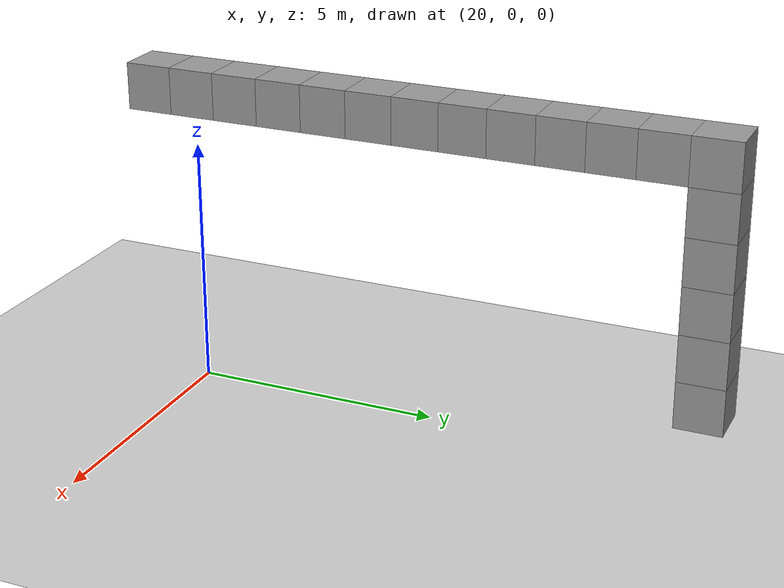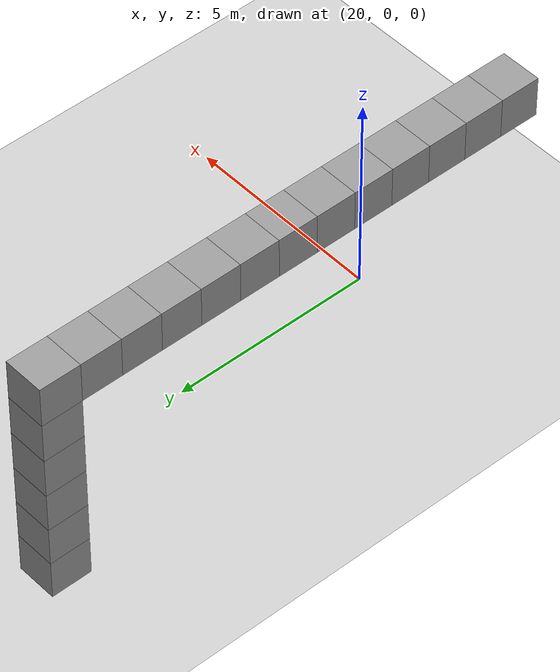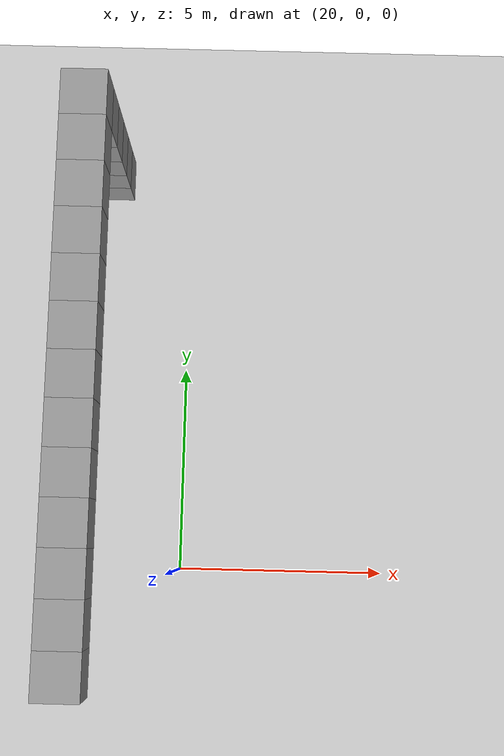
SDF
<sdf version="1.6">
 <world name="default">
  <model name="ground_plane">
   <static>1</static>
   <link name="link">
    <collision name="collision">
     <geometry><plane><normal>0 0 1</normal><size>100 100</size></plane></geometry>
     <surface>
      <contact><collide_bitmask>65535</collide_bitmask></contact>
      <friction><ode><mu>100</mu><mu2>50</mu2></ode></friction>
     </surface>
    </collision>
    <visual name="visual">
     <cast_shadows>0</cast_shadows>
     <geometry><plane><normal>0 0 1</normal><size>100 100</size></plane></geometry>
     <material>
      <script><uri>file://media/materials/scripts/gazebo.material</uri><name>Gazebo/Grey</name></script>
     </material>
    </visual>
   </link>
  </model>
  <model name="obs_box_clone_1_clone_clone_clone_clone_clone_clone_clone_3">
   <link name="link">
    <inertial>
     <mass>1</mass>
     <inertia>
      <ixx>0.166667</ixx>
      <ixy>0</ixy>
      <ixz>0</ixz>
      <iyy>0.166667</iyy>
      <iyz>0</iyz>
      <izz>0.166667</izz>
     </inertia>
    </inertial>
    <visual name="visual">
     <geometry><box><size>1 1 1</size></box></geometry>
     <material>
      <script><name>Gazebo/Grey</name><uri>file://media/materials/scripts/gazebo.material</uri></script>
     </material>
    </visual>
    <collision name="collision">
     <geometry><box><size>1 1 1</size></box></geometry>
     <surface>
      <friction>
       <ode><mu>1</mu><mu2>1</mu2><fdir1>0 0 0</fdir1><slip1>0</slip1><slip2>0</slip2></ode>
       <torsional>
        <coefficient>1</coefficient>
        <patch_radius>0</patch_radius>
        <surface_radius>0</surface_radius>
        <use_patch_radius>1</use_patch_radius>
        <ode><slip>0</slip></ode>
       </torsional>
      </friction>
      <bounce><restitution_coefficient>0</restitution_coefficient><threshold>1e+06</threshold></bounce>
      <contact>
       <collide_without_contact>0</collide_without_contact>
       <collide_without_contact_bitmask>1</collide_without_contact_bitmask>
       <collide_bitmask>1</collide_bitmask>
       <ode>
        <soft_cfm>0</soft_cfm>
        <soft_erp>0.2</soft_erp>
        <kp>1e+13</kp>
        <kd>1</kd>
        <max_vel>0.01</max_vel>
        <min_depth>0</min_depth>
       </ode>
       <bullet>
        <split_impulse>1</split_impulse>
        <split_impulse_penetration_threshold>-0.01</split_impulse_penetration_threshold>
        <soft_cfm>0</soft_cfm>
        <soft_erp>0.2</soft_erp>
        <kp>1e+13</kp>
        <kd>1</kd>
       </bullet>
      </contact>
     </surface>
    </collision>
   </link>
   <static>1</static>
   <pose>18 -2 5.5 0 -0 0</pose>
  </model>
  <model name="obs_box_clone_1_clone_clone_clone_clone_clone_clone_clone_4">
   <link name="link">
    <inertial>
     <mass>1</mass>
     <inertia>
      <ixx>0.166667</ixx>
      <ixy>0</ixy>
      <ixz>0</ixz>
      <iyy>0.166667</iyy>
      <iyz>0</iyz>
      <izz>0.166667</izz>
     </inertia>
    </inertial>
    <visual name="visual">
     <geometry><box><size>1 1 1</size></box></geometry>
     <material>
      <script><name>Gazebo/Grey</name><uri>file://media/materials/scripts/gazebo.material</uri></script>
     </material>
    </visual>
    <collision name="collision">
     <geometry><box><size>1 1 1</size></box></geometry>
     <surface>
      <friction>
       <ode><mu>1</mu><mu2>1</mu2><fdir1>0 0 0</fdir1><slip1>0</slip1><slip2>0</slip2></ode>
       <torsional>
        <coefficient>1</coefficient>
        <patch_radius>0</patch_radius>
        <surface_radius>0</surface_radius>
        <use_patch_radius>1</use_patch_radius>
        <ode><slip>0</slip></ode>
       </torsional>
      </friction>
      <bounce><restitution_coefficient>0</restitution_coefficient><threshold>1e+06</threshold></bounce>
      <contact>
       <collide_without_contact>0</collide_without_contact>
       <collide_without_contact_bitmask>1</collide_without_contact_bitmask>
       <collide_bitmask>1</collide_bitmask>
       <ode>
        <soft_cfm>0</soft_cfm>
        <soft_erp>0.2</soft_erp>
        <kp>1e+13</kp>
        <kd>1</kd>
        <max_vel>0.01</max_vel>
        <min_depth>0</min_depth>
       </ode>
       <bullet>
        <split_impulse>1</split_impulse>
        <split_impulse_penetration_threshold>-0.01</split_impulse_penetration_threshold>
        <soft_cfm>0</soft_cfm>
        <soft_erp>0.2</soft_erp>
        <kp>1e+13</kp>
        <kd>1</kd>
       </bullet>
      </contact>
     </surface>
    </collision>
   </link>
   <static>1</static>
   <pose>18 -1 5.5 0 -0 0</pose>
  </model>
  <model name="obs_box_clone_1_clone_clone_clone_clone_clone_clone_clone_5">
   <link name="link">
    <inertial>
     <mass>1</mass>
     <inertia>
      <ixx>0.166667</ixx>
      <ixy>0</ixy>
      <ixz>0</ixz>
      <iyy>0.166667</iyy>
      <iyz>0</iyz>
      <izz>0.166667</izz>
     </inertia>
    </inertial>
    <visual name="visual">
     <geometry><box><size>1 1 1</size></box></geometry>
     <material>
      <script><name>Gazebo/Grey</name><uri>file://media/materials/scripts/gazebo.material</uri></script>
     </material>
    </visual>
    <collision name="collision">
     <geometry><box><size>1 1 1</size></box></geometry>
     <surface>
      <friction>
       <ode><mu>1</mu><mu2>1</mu2><fdir1>0 0 0</fdir1><slip1>0</slip1><slip2>0</slip2></ode>
       <torsional>
        <coefficient>1</coefficient>
        <patch_radius>0</patch_radius>
        <surface_radius>0</surface_radius>
        <use_patch_radius>1</use_patch_radius>
        <ode><slip>0</slip></ode>
       </torsional>
      </friction>
      <bounce><restitution_coefficient>0</restitution_coefficient><threshold>1e+06</threshold></bounce>
      <contact>
       <collide_without_contact>0</collide_without_contact>
       <collide_without_contact_bitmask>1</collide_without_contact_bitmask>
       <collide_bitmask>1</collide_bitmask>
       <ode>
        <soft_cfm>0</soft_cfm>
        <soft_erp>0.2</soft_erp>
        <kp>1e+13</kp>
        <kd>1</kd>
        <max_vel>0.01</max_vel>
        <min_depth>0</min_depth>
       </ode>
       <bullet>
        <split_impulse>1</split_impulse>
        <split_impulse_penetration_threshold>-0.01</split_impulse_penetration_threshold>
        <soft_cfm>0</soft_cfm>
        <soft_erp>0.2</soft_erp>
        <kp>1e+13</kp>
        <kd>1</kd>
       </bullet>
      </contact>
     </surface>
    </collision>
   </link>
   <static>1</static>
   <pose>18 0 5.5 0 -0 0</pose>
  </model>
  <model name="obs_box_clone_1_clone_clone_clone_clone_clone_clone_clone_6">
   <link name="link">
    <inertial>
     <mass>1</mass>
     <inertia>
      <ixx>0.166667</ixx>
      <ixy>0</ixy>
      <ixz>0</ixz>
      <iyy>0.166667</iyy>
      <iyz>0</iyz>
      <izz>0.166667</izz>
     </inertia>
    </inertial>
    <visual name="visual">
     <geometry><box><size>1 1 1</size></box></geometry>
     <material>
      <script><name>Gazebo/Grey</name><uri>file://media/materials/scripts/gazebo.material</uri></script>
     </material>
    </visual>
    <collision name="collision">
     <geometry><box><size>1 1 1</size></box></geometry>
     <surface>
      <friction>
       <ode><mu>1</mu><mu2>1</mu2><fdir1>0 0 0</fdir1><slip1>0</slip1><slip2>0</slip2></ode>
       <torsional>
        <coefficient>1</coefficient>
        <patch_radius>0</patch_radius>
        <surface_radius>0</surface_radius>
        <use_patch_radius>1</use_patch_radius>
        <ode><slip>0</slip></ode>
       </torsional>
      </friction>
      <bounce><restitution_coefficient>0</restitution_coefficient><threshold>1e+06</threshold></bounce>
      <contact>
       <collide_without_contact>0</collide_without_contact>
       <collide_without_contact_bitmask>1</collide_without_contact_bitmask>
       <collide_bitmask>1</collide_bitmask>
       <ode>
        <soft_cfm>0</soft_cfm>
        <soft_erp>0.2</soft_erp>
        <kp>1e+13</kp>
        <kd>1</kd>
        <max_vel>0.01</max_vel>
        <min_depth>0</min_depth>
       </ode>
       <bullet>
        <split_impulse>1</split_impulse>
        <split_impulse_penetration_threshold>-0.01</split_impulse_penetration_threshold>
        <soft_cfm>0</soft_cfm>
        <soft_erp>0.2</soft_erp>
        <kp>1e+13</kp>
        <kd>1</kd>
       </bullet>
      </contact>
     </surface>
    </collision>
   </link>
   <static>1</static>
   <pose>18 1 5.5 0 -0 0</pose>
  </model>
  <model name="obs_box_clone_1_clone_clone_clone_clone_clone_clone_clone_7">
   <link name="link">
    <inertial>
     <mass>1</mass>
     <inertia>
      <ixx>0.166667</ixx>
      <ixy>0</ixy>
      <ixz>0</ixz>
      <iyy>0.166667</iyy>
      <iyz>0</iyz>
      <izz>0.166667</izz>
     </inertia>
    </inertial>
    <visual name="visual">
     <geometry><box><size>1 1 1</size></box></geometry>
     <material>
      <script><name>Gazebo/Grey</name><uri>file://media/materials/scripts/gazebo.material</uri></script>
     </material>
    </visual>
    <collision name="collision">
     <geometry><box><size>1 1 1</size></box></geometry>
     <surface>
      <friction>
       <ode><mu>1</mu><mu2>1</mu2><fdir1>0 0 0</fdir1><slip1>0</slip1><slip2>0</slip2></ode>
       <torsional>
        <coefficient>1</coefficient>
        <patch_radius>0</patch_radius>
        <surface_radius>0</surface_radius>
        <use_patch_radius>1</use_patch_radius>
        <ode><slip>0</slip></ode>
       </torsional>
      </friction>
      <bounce><restitution_coefficient>0</restitution_coefficient><threshold>1e+06</threshold></bounce>
      <contact>
       <collide_without_contact>0</collide_without_contact>
       <collide_without_contact_bitmask>1</collide_without_contact_bitmask>
       <collide_bitmask>1</collide_bitmask>
       <ode>
        <soft_cfm>0</soft_cfm>
        <soft_erp>0.2</soft_erp>
        <kp>1e+13</kp>
        <kd>1</kd>
        <max_vel>0.01</max_vel>
        <min_depth>0</min_depth>
       </ode>
       <bullet>
        <split_impulse>1</split_impulse>
        <split_impulse_penetration_threshold>-0.01</split_impulse_penetration_threshold>
        <soft_cfm>0</soft_cfm>
        <soft_erp>0.2</soft_erp>
        <kp>1e+13</kp>
        <kd>1</kd>
       </bullet>
      </contact>
     </surface>
    </collision>
   </link>
   <static>1</static>
   <pose>18 3 5.5 0 -0 0</pose>
  </model>
  <model name="obs_box_clone_1_clone_clone_clone_clone_clone_clone_clone_8">
   <link name="link">
    <inertial>
     <mass>1</mass>
     <inertia>
      <ixx>0.166667</ixx>
      <ixy>0</ixy>
      <ixz>0</ixz>
      <iyy>0.166667</iyy>
      <iyz>0</iyz>
      <izz>0.166667</izz>
     </inertia>
    </inertial>
    <visual name="visual">
     <geometry><box><size>1 1 1</size></box></geometry>
     <material>
      <script><name>Gazebo/Grey</name><uri>file://media/materials/scripts/gazebo.material</uri></script>
     </material>
    </visual>
    <collision name="collision">
     <geometry><box><size>1 1 1</size></box></geometry>
     <surface>
      <friction>
       <ode><mu>1</mu><mu2>1</mu2><fdir1>0 0 0</fdir1><slip1>0</slip1><slip2>0</slip2></ode>
       <torsional>
        <coefficient>1</coefficient>
        <patch_radius>0</patch_radius>
        <surface_radius>0</surface_radius>
        <use_patch_radius>1</use_patch_radius>
        <ode><slip>0</slip></ode>
       </torsional>
      </friction>
      <bounce><restitution_coefficient>0</restitution_coefficient><threshold>1e+06</threshold></bounce>
      <contact>
       <collide_without_contact>0</collide_without_contact>
       <collide_without_contact_bitmask>1</collide_without_contact_bitmask>
       <collide_bitmask>1</collide_bitmask>
       <ode>
        <soft_cfm>0</soft_cfm>
        <soft_erp>0.2</soft_erp>
        <kp>1e+13</kp>
        <kd>1</kd>
        <max_vel>0.01</max_vel>
        <min_depth>0</min_depth>
       </ode>
       <bullet>
        <split_impulse>1</split_impulse>
        <split_impulse_penetration_threshold>-0.01</split_impulse_penetration_threshold>
        <soft_cfm>0</soft_cfm>
        <soft_erp>0.2</soft_erp>
        <kp>1e+13</kp>
        <kd>1</kd>
       </bullet>
      </contact>
     </surface>
    </collision>
   </link>
   <static>1</static>
   <pose>18 2 5.5 0 -0 0</pose>
  </model>
  <model name="obs_box_clone_1_clone_clone_clone_clone_clone_clone_clone_9">
   <link name="link">
    <inertial>
     <mass>1</mass>
     <inertia>
      <ixx>0.166667</ixx>
      <ixy>0</ixy>
      <ixz>0</ixz>
      <iyy>0.166667</iyy>
      <iyz>0</iyz>
      <izz>0.166667</izz>
     </inertia>
    </inertial>
    <visual name="visual">
     <geometry><box><size>1 1 1</size></box></geometry>
     <material>
      <script><name>Gazebo/Grey</name><uri>file://media/materials/scripts/gazebo.material</uri></script>
     </material>
    </visual>
    <collision name="collision">
     <geometry><box><size>1 1 1</size></box></geometry>
     <surface>
      <friction>
       <ode><mu>1</mu><mu2>1</mu2><fdir1>0 0 0</fdir1><slip1>0</slip1><slip2>0</slip2></ode>
       <torsional>
        <coefficient>1</coefficient>
        <patch_radius>0</patch_radius>
        <surface_radius>0</surface_radius>
        <use_patch_radius>1</use_patch_radius>
        <ode><slip>0</slip></ode>
       </torsional>
      </friction>
      <bounce><restitution_coefficient>0</restitution_coefficient><threshold>1e+06</threshold></bounce>
      <contact>
       <collide_without_contact>0</collide_without_contact>
       <collide_without_contact_bitmask>1</collide_without_contact_bitmask>
       <collide_bitmask>1</collide_bitmask>
       <ode>
        <soft_cfm>0</soft_cfm>
        <soft_erp>0.2</soft_erp>
        <kp>1e+13</kp>
        <kd>1</kd>
        <max_vel>0.01</max_vel>
        <min_depth>0</min_depth>
       </ode>
       <bullet>
        <split_impulse>1</split_impulse>
        <split_impulse_penetration_threshold>-0.01</split_impulse_penetration_threshold>
        <soft_cfm>0</soft_cfm>
        <soft_erp>0.2</soft_erp>
        <kp>1e+13</kp>
        <kd>1</kd>
       </bullet>
      </contact>
     </surface>
    </collision>
   </link>
   <static>1</static>
   <pose>18 4 5.5 0 -0 0</pose>
  </model>
  <model name="obs_box_clone_1_clone_clone_clone_clone_clone_clone_clone_10">
   <link name="link">
    <inertial>
     <mass>1</mass>
     <inertia>
      <ixx>0.166667</ixx>
      <ixy>0</ixy>
      <ixz>0</ixz>
      <iyy>0.166667</iyy>
      <iyz>0</iyz>
      <izz>0.166667</izz>
     </inertia>
    </inertial>
    <visual name="visual">
     <geometry><box><size>1 1 1</size></box></geometry>
     <material>
      <script><name>Gazebo/Grey</name><uri>file://media/materials/scripts/gazebo.material</uri></script>
     </material>
    </visual>
    <collision name="collision">
     <geometry><box><size>1 1 1</size></box></geometry>
     <surface>
      <friction>
       <ode><mu>1</mu><mu2>1</mu2><fdir1>0 0 0</fdir1><slip1>0</slip1><slip2>0</slip2></ode>
       <torsional>
        <coefficient>1</coefficient>
        <patch_radius>0</patch_radius>
        <surface_radius>0</surface_radius>
        <use_patch_radius>1</use_patch_radius>
        <ode><slip>0</slip></ode>
       </torsional>
      </friction>
      <bounce><restitution_coefficient>0</restitution_coefficient><threshold>1e+06</threshold></bounce>
      <contact>
       <collide_without_contact>0</collide_without_contact>
       <collide_without_contact_bitmask>1</collide_without_contact_bitmask>
       <collide_bitmask>1</collide_bitmask>
       <ode>
        <soft_cfm>0</soft_cfm>
        <soft_erp>0.2</soft_erp>
        <kp>1e+13</kp>
        <kd>1</kd>
        <max_vel>0.01</max_vel>
        <min_depth>0</min_depth>
       </ode>
       <bullet>
        <split_impulse>1</split_impulse>
        <split_impulse_penetration_threshold>-0.01</split_impulse_penetration_threshold>
        <soft_cfm>0</soft_cfm>
        <soft_erp>0.2</soft_erp>
        <kp>1e+13</kp>
        <kd>1</kd>
       </bullet>
      </contact>
     </surface>
    </collision>
   </link>
   <static>1</static>
   <pose>18 6 5.5 0 -0 0</pose>
  </model>
  <model name="obs_box_clone_1_clone_clone_clone_clone_clone_clone_clone_11">
   <link name="link">
    <inertial>
     <mass>1</mass>
     <inertia>
      <ixx>0.166667</ixx>
      <ixy>0</ixy>
      <ixz>0</ixz>
      <iyy>0.166667</iyy>
      <iyz>0</iyz>
      <izz>0.166667</izz>
     </inertia>
    </inertial>
    <visual name="visual">
     <geometry><box><size>1 1 1</size></box></geometry>
     <material>
      <script><name>Gazebo/Grey</name><uri>file://media/materials/scripts/gazebo.material</uri></script>
     </material>
    </visual>
    <collision name="collision">
     <geometry><box><size>1 1 1</size></box></geometry>
     <surface>
      <friction>
       <ode><mu>1</mu><mu2>1</mu2><fdir1>0 0 0</fdir1><slip1>0</slip1><slip2>0</slip2></ode>
       <torsional>
        <coefficient>1</coefficient>
        <patch_radius>0</patch_radius>
        <surface_radius>0</surface_radius>
        <use_patch_radius>1</use_patch_radius>
        <ode><slip>0</slip></ode>
       </torsional>
      </friction>
      <bounce><restitution_coefficient>0</restitution_coefficient><threshold>1e+06</threshold></bounce>
      <contact>
       <collide_without_contact>0</collide_without_contact>
       <collide_without_contact_bitmask>1</collide_without_contact_bitmask>
       <collide_bitmask>1</collide_bitmask>
       <ode>
        <soft_cfm>0</soft_cfm>
        <soft_erp>0.2</soft_erp>
        <kp>1e+13</kp>
        <kd>1</kd>
        <max_vel>0.01</max_vel>
        <min_depth>0</min_depth>
       </ode>
       <bullet>
        <split_impulse>1</split_impulse>
        <split_impulse_penetration_threshold>-0.01</split_impulse_penetration_threshold>
        <soft_cfm>0</soft_cfm>
        <soft_erp>0.2</soft_erp>
        <kp>1e+13</kp>
        <kd>1</kd>
       </bullet>
      </contact>
     </surface>
    </collision>
   </link>
   <static>1</static>
   <pose>18 5 5.5 0 -0 0</pose>
  </model>
  <model name="obs_box_clone_1_clone_0">
   <link name="link">
    <inertial>
     <mass>1</mass>
     <inertia>
      <ixx>0.166667</ixx>
      <ixy>0</ixy>
      <ixz>0</ixz>
      <iyy>0.166667</iyy>
      <iyz>0</iyz>
      <izz>0.166667</izz>
     </inertia>
    </inertial>
    <visual name="visual">
     <geometry><box><size>1 1 1</size></box></geometry>
     <material>
      <script><name>Gazebo/Grey</name><uri>file://media/materials/scripts/gazebo.material</uri></script>
     </material>
    </visual>
    <collision name="collision">
     <geometry><box><size>1 1 1</size></box></geometry>
     <surface>
      <friction>
       <ode><mu>1</mu><mu2>1</mu2><fdir1>0 0 0</fdir1><slip1>0</slip1><slip2>0</slip2></ode>
       <torsional>
        <coefficient>1</coefficient>
        <patch_radius>0</patch_radius>
        <surface_radius>0</surface_radius>
        <use_patch_radius>1</use_patch_radius>
        <ode><slip>0</slip></ode>
       </torsional>
      </friction>
      <bounce><restitution_coefficient>0</restitution_coefficient><threshold>1e+06</threshold></bounce>
      <contact>
       <collide_without_contact>0</collide_without_contact>
       <collide_without_contact_bitmask>1</collide_without_contact_bitmask>
       <collide_bitmask>1</collide_bitmask>
       <ode>
        <soft_cfm>0</soft_cfm>
        <soft_erp>0.2</soft_erp>
        <kp>1e+13</kp>
        <kd>1</kd>
        <max_vel>0.01</max_vel>
        <min_depth>0</min_depth>
       </ode>
       <bullet>
        <split_impulse>1</split_impulse>
        <split_impulse_penetration_threshold>-0.01</split_impulse_penetration_threshold>
        <soft_cfm>0</soft_cfm>
        <soft_erp>0.2</soft_erp>
        <kp>1e+13</kp>
        <kd>1</kd>
       </bullet>
      </contact>
     </surface>
    </collision>
   </link>
   <static>1</static>
   <pose>18 10 0.5 0 -0 0</pose>
  </model>
  <model name="obs_box_clone_1_clone_clone_0">
   <link name="link">
    <inertial>
     <mass>1</mass>
     <inertia>
      <ixx>0.166667</ixx>
      <ixy>0</ixy>
      <ixz>0</ixz>
      <iyy>0.166667</iyy>
      <iyz>0</iyz>
      <izz>0.166667</izz>
     </inertia>
    </inertial>
    <visual name="visual">
     <geometry><box><size>1 1 1</size></box></geometry>
     <material>
      <script><name>Gazebo/Grey</name><uri>file://media/materials/scripts/gazebo.material</uri></script>
     </material>
    </visual>
    <collision name="collision">
     <geometry><box><size>1 1 1</size></box></geometry>
     <surface>
      <friction>
       <ode><mu>1</mu><mu2>1</mu2><fdir1>0 0 0</fdir1><slip1>0</slip1><slip2>0</slip2></ode>
       <torsional>
        <coefficient>1</coefficient>
        <patch_radius>0</patch_radius>
        <surface_radius>0</surface_radius>
        <use_patch_radius>1</use_patch_radius>
        <ode><slip>0</slip></ode>
       </torsional>
      </friction>
      <bounce><restitution_coefficient>0</restitution_coefficient><threshold>1e+06</threshold></bounce>
      <contact>
       <collide_without_contact>0</collide_without_contact>
       <collide_without_contact_bitmask>1</collide_without_contact_bitmask>
       <collide_bitmask>1</collide_bitmask>
       <ode>
        <soft_cfm>0</soft_cfm>
        <soft_erp>0.2</soft_erp>
        <kp>1e+13</kp>
        <kd>1</kd>
        <max_vel>0.01</max_vel>
        <min_depth>0</min_depth>
       </ode>
       <bullet>
        <split_impulse>1</split_impulse>
        <split_impulse_penetration_threshold>-0.01</split_impulse_penetration_threshold>
        <soft_cfm>0</soft_cfm>
        <soft_erp>0.2</soft_erp>
        <kp>1e+13</kp>
        <kd>1</kd>
       </bullet>
      </contact>
     </surface>
    </collision>
   </link>
   <static>1</static>
   <pose>18 10 1.5 0 -0 0</pose>
  </model>
  <model name="obs_box_clone_1_clone_clone_clone_0">
   <link name="link">
    <inertial>
     <mass>1</mass>
     <inertia>
      <ixx>0.166667</ixx>
      <ixy>0</ixy>
      <ixz>0</ixz>
      <iyy>0.166667</iyy>
      <iyz>0</iyz>
      <izz>0.166667</izz>
     </inertia>
    </inertial>
    <visual name="visual">
     <geometry><box><size>1 1 1</size></box></geometry>
     <material>
      <script><name>Gazebo/Grey</name><uri>file://media/materials/scripts/gazebo.material</uri></script>
     </material>
    </visual>
    <collision name="collision">
     <geometry><box><size>1 1 1</size></box></geometry>
     <surface>
      <friction>
       <ode><mu>1</mu><mu2>1</mu2><fdir1>0 0 0</fdir1><slip1>0</slip1><slip2>0</slip2></ode>
       <torsional>
        <coefficient>1</coefficient>
        <patch_radius>0</patch_radius>
        <surface_radius>0</surface_radius>
        <use_patch_radius>1</use_patch_radius>
        <ode><slip>0</slip></ode>
       </torsional>
      </friction>
      <bounce><restitution_coefficient>0</restitution_coefficient><threshold>1e+06</threshold></bounce>
      <contact>
       <collide_without_contact>0</collide_without_contact>
       <collide_without_contact_bitmask>1</collide_without_contact_bitmask>
       <collide_bitmask>1</collide_bitmask>
       <ode>
        <soft_cfm>0</soft_cfm>
        <soft_erp>0.2</soft_erp>
        <kp>1e+13</kp>
        <kd>1</kd>
        <max_vel>0.01</max_vel>
        <min_depth>0</min_depth>
       </ode>
       <bullet>
        <split_impulse>1</split_impulse>
        <split_impulse_penetration_threshold>-0.01</split_impulse_penetration_threshold>
        <soft_cfm>0</soft_cfm>
        <soft_erp>0.2</soft_erp>
        <kp>1e+13</kp>
        <kd>1</kd>
       </bullet>
      </contact>
     </surface>
    </collision>
   </link>
   <static>1</static>
   <pose>18 10 2.5 0 -0 0</pose>
  </model>
  <model name="obs_box_clone_1_clone_clone_clone_clone_0">
   <link name="link">
    <inertial>
     <mass>1</mass>
     <inertia>
      <ixx>0.166667</ixx>
      <ixy>0</ixy>
      <ixz>0</ixz>
      <iyy>0.166667</iyy>
      <iyz>0</iyz>
      <izz>0.166667</izz>
     </inertia>
    </inertial>
    <visual name="visual">
     <geometry><box><size>1 1 1</size></box></geometry>
     <material>
      <script><name>Gazebo/Grey</name><uri>file://media/materials/scripts/gazebo.material</uri></script>
     </material>
    </visual>
    <collision name="collision">
     <geometry><box><size>1 1 1</size></box></geometry>
     <surface>
      <friction>
       <ode><mu>1</mu><mu2>1</mu2><fdir1>0 0 0</fdir1><slip1>0</slip1><slip2>0</slip2></ode>
       <torsional>
        <coefficient>1</coefficient>
        <patch_radius>0</patch_radius>
        <surface_radius>0</surface_radius>
        <use_patch_radius>1</use_patch_radius>
        <ode><slip>0</slip></ode>
       </torsional>
      </friction>
      <bounce><restitution_coefficient>0</restitution_coefficient><threshold>1e+06</threshold></bounce>
      <contact>
       <collide_without_contact>0</collide_without_contact>
       <collide_without_contact_bitmask>1</collide_without_contact_bitmask>
       <collide_bitmask>1</collide_bitmask>
       <ode>
        <soft_cfm>0</soft_cfm>
        <soft_erp>0.2</soft_erp>
        <kp>1e+13</kp>
        <kd>1</kd>
        <max_vel>0.01</max_vel>
        <min_depth>0</min_depth>
       </ode>
       <bullet>
        <split_impulse>1</split_impulse>
        <split_impulse_penetration_threshold>-0.01</split_impulse_penetration_threshold>
        <soft_cfm>0</soft_cfm>
        <soft_erp>0.2</soft_erp>
        <kp>1e+13</kp>
        <kd>1</kd>
       </bullet>
      </contact>
     </surface>
    </collision>
   </link>
   <static>1</static>
   <pose>18 10 3.5 0 -0 0</pose>
  </model>
  <model name="obs_box_clone_1_clone_clone_clone_clone_clone_0">
   <link name="link">
    <inertial>
     <mass>1</mass>
     <inertia>
      <ixx>0.166667</ixx>
      <ixy>0</ixy>
      <ixz>0</ixz>
      <iyy>0.166667</iyy>
      <iyz>0</iyz>
      <izz>0.166667</izz>
     </inertia>
    </inertial>
    <visual name="visual">
     <geometry><box><size>1 1 1</size></box></geometry>
     <material>
      <script><name>Gazebo/Grey</name><uri>file://media/materials/scripts/gazebo.material</uri></script>
     </material>
    </visual>
    <collision name="collision">
     <geometry><box><size>1 1 1</size></box></geometry>
     <surface>
      <friction>
       <ode><mu>1</mu><mu2>1</mu2><fdir1>0 0 0</fdir1><slip1>0</slip1><slip2>0</slip2></ode>
       <torsional>
        <coefficient>1</coefficient>
        <patch_radius>0</patch_radius>
        <surface_radius>0</surface_radius>
        <use_patch_radius>1</use_patch_radius>
        <ode><slip>0</slip></ode>
       </torsional>
      </friction>
      <bounce><restitution_coefficient>0</restitution_coefficient><threshold>1e+06</threshold></bounce>
      <contact>
       <collide_without_contact>0</collide_without_contact>
       <collide_without_contact_bitmask>1</collide_without_contact_bitmask>
       <collide_bitmask>1</collide_bitmask>
       <ode>
        <soft_cfm>0</soft_cfm>
        <soft_erp>0.2</soft_erp>
        <kp>1e+13</kp>
        <kd>1</kd>
        <max_vel>0.01</max_vel>
        <min_depth>0</min_depth>
       </ode>
       <bullet>
        <split_impulse>1</split_impulse>
        <split_impulse_penetration_threshold>-0.01</split_impulse_penetration_threshold>
        <soft_cfm>0</soft_cfm>
        <soft_erp>0.2</soft_erp>
        <kp>1e+13</kp>
        <kd>1</kd>
       </bullet>
      </contact>
     </surface>
    </collision>
   </link>
   <static>1</static>
   <pose>18 10 4.5 0 -0 0</pose>
  </model>
  <model name="obs_box_clone_1_clone_clone_clone_clone_clone_clone_0">
   <link name="link">
    <inertial>
     <mass>1</mass>
     <inertia>
      <ixx>0.166667</ixx>
      <ixy>0</ixy>
      <ixz>0</ixz>
      <iyy>0.166667</iyy>
      <iyz>0</iyz>
      <izz>0.166667</izz>
     </inertia>
    </inertial>
    <visual name="visual">
     <geometry><box><size>1 1 1</size></box></geometry>
     <material>
      <script><name>Gazebo/Grey</name><uri>file://media/materials/scripts/gazebo.material</uri></script>
     </material>
    </visual>
    <collision name="collision">
     <geometry><box><size>1 1 1</size></box></geometry>
     <surface>
      <friction>
       <ode><mu>1</mu><mu2>1</mu2><fdir1>0 0 0</fdir1><slip1>0</slip1><slip2>0</slip2></ode>
       <torsional>
        <coefficient>1</coefficient>
        <patch_radius>0</patch_radius>
        <surface_radius>0</surface_radius>
        <use_patch_radius>1</use_patch_radius>
        <ode><slip>0</slip></ode>
       </torsional>
      </friction>
      <bounce><restitution_coefficient>0</restitution_coefficient><threshold>1e+06</threshold></bounce>
      <contact>
       <collide_without_contact>0</collide_without_contact>
       <collide_without_contact_bitmask>1</collide_without_contact_bitmask>
       <collide_bitmask>1</collide_bitmask>
       <ode>
        <soft_cfm>0</soft_cfm>
        <soft_erp>0.2</soft_erp>
        <kp>1e+13</kp>
        <kd>1</kd>
        <max_vel>0.01</max_vel>
        <min_depth>0</min_depth>
       </ode>
       <bullet>
        <split_impulse>1</split_impulse>
        <split_impulse_penetration_threshold>-0.01</split_impulse_penetration_threshold>
        <soft_cfm>0</soft_cfm>
        <soft_erp>0.2</soft_erp>
        <kp>1e+13</kp>
        <kd>1</kd>
       </bullet>
      </contact>
     </surface>
    </collision>
   </link>
   <static>1</static>
   <pose>18 10 5.5 0 -0 0</pose>
  </model>
  <model name="obs_box_clone_1_clone_clone_clone_clone_clone_clone_clone_11_clone">
   <link name="link">
    <inertial>
     <mass>1</mass>
     <inertia>
      <ixx>0.166667</ixx>
      <ixy>0</ixy>
      <ixz>0</ixz>
      <iyy>0.166667</iyy>
      <iyz>0</iyz>
      <izz>0.166667</izz>
     </inertia>
    </inertial>
    <visual name="visual">
     <geometry><box><size>1 1 1</size></box></geometry>
     <material>
      <script><name>Gazebo/Grey</name><uri>file://media/materials/scripts/gazebo.material</uri></script>
     </material>
    </visual>
    <collision name="collision">
     <geometry><box><size>1 1 1</size></box></geometry>
     <surface>
      <friction>
       <ode><mu>1</mu><mu2>1</mu2><fdir1>0 0 0</fdir1><slip1>0</slip1><slip2>0</slip2></ode>
       <torsional>
        <coefficient>1</coefficient>
        <patch_radius>0</patch_radius>
        <surface_radius>0</surface_radius>
        <use_patch_radius>1</use_patch_radius>
        <ode><slip>0</slip></ode>
       </torsional>
      </friction>
      <bounce><restitution_coefficient>0</restitution_coefficient><threshold>1e+06</threshold></bounce>
      <contact>
       <collide_without_contact>0</collide_without_contact>
       <collide_without_contact_bitmask>1</collide_without_contact_bitmask>
       <collide_bitmask>1</collide_bitmask>
       <ode>
        <soft_cfm>0</soft_cfm>
        <soft_erp>0.2</soft_erp>
        <kp>1e+13</kp>
        <kd>1</kd>
        <max_vel>0.01</max_vel>
        <min_depth>0</min_depth>
       </ode>
       <bullet>
        <split_impulse>1</split_impulse>
        <split_impulse_penetration_threshold>-0.01</split_impulse_penetration_threshold>
        <soft_cfm>0</soft_cfm>
        <soft_erp>0.2</soft_erp>
        <kp>1e+13</kp>
        <kd>1</kd>
       </bullet>
      </contact>
     </surface>
    </collision>
   </link>
   <static>1</static>
   <pose>18 7 5.5 0 -0 0</pose>
  </model>
  <model name="obs_box_clone_1_clone_clone_clone_clone_clone_clone_clone_11_clone_0">
   <link name="link">
    <inertial>
     <mass>1</mass>
     <inertia>
      <ixx>0.166667</ixx>
      <ixy>0</ixy>
      <ixz>0</ixz>
      <iyy>0.166667</iyy>
      <iyz>0</iyz>
      <izz>0.166667</izz>
     </inertia>
    </inertial>
    <visual name="visual">
     <geometry><box><size>1 1 1</size></box></geometry>
     <material>
      <script><name>Gazebo/Grey</name><uri>file://media/materials/scripts/gazebo.material</uri></script>
     </material>
    </visual>
    <collision name="collision">
     <geometry><box><size>1 1 1</size></box></geometry>
     <surface>
      <friction>
       <ode><mu>1</mu><mu2>1</mu2><fdir1>0 0 0</fdir1><slip1>0</slip1><slip2>0</slip2></ode>
       <torsional>
        <coefficient>1</coefficient>
        <patch_radius>0</patch_radius>
        <surface_radius>0</surface_radius>
        <use_patch_radius>1</use_patch_radius>
        <ode><slip>0</slip></ode>
       </torsional>
      </friction>
      <bounce><restitution_coefficient>0</restitution_coefficient><threshold>1e+06</threshold></bounce>
      <contact>
       <collide_without_contact>0</collide_without_contact>
       <collide_without_contact_bitmask>1</collide_without_contact_bitmask>
       <collide_bitmask>1</collide_bitmask>
       <ode>
        <soft_cfm>0</soft_cfm>
        <soft_erp>0.2</soft_erp>
        <kp>1e+13</kp>
        <kd>1</kd>
        <max_vel>0.01</max_vel>
        <min_depth>0</min_depth>
       </ode>
       <bullet>
        <split_impulse>1</split_impulse>
        <split_impulse_penetration_threshold>-0.01</split_impulse_penetration_threshold>
        <soft_cfm>0</soft_cfm>
        <soft_erp>0.2</soft_erp>
        <kp>1e+13</kp>
        <kd>1</kd>
       </bullet>
      </contact>
     </surface>
    </collision>
   </link>
   <static>1</static>
   <pose>18 8 5.5 0 -0 0</pose>
  </model>
  <model name="obs_box_clone_1_clone_clone_clone_clone_clone_clone_clone_11_clone_1">
   <link name="link">
    <inertial>
     <mass>1</mass>
     <inertia>
      <ixx>0.166667</ixx>
      <ixy>0</ixy>
      <ixz>0</ixz>
      <iyy>0.166667</iyy>
      <iyz>0</iyz>
      <izz>0.166667</izz>
     </inertia>
    </inertial>
    <visual name="visual">
     <geometry><box><size>1 1 1</size></box></geometry>
     <material>
      <script><name>Gazebo/Grey</name><uri>file://media/materials/scripts/gazebo.material</uri></script>
     </material>
    </visual>
    <collision name="collision">
     <geometry><box><size>1 1 1</size></box></geometry>
     <surface>
      <friction>
       <ode><mu>1</mu><mu2>1</mu2><fdir1>0 0 0</fdir1><slip1>0</slip1><slip2>0</slip2></ode>
       <torsional>
        <coefficient>1</coefficient>
        <patch_radius>0</patch_radius>
        <surface_radius>0</surface_radius>
        <use_patch_radius>1</use_patch_radius>
        <ode><slip>0</slip></ode>
       </torsional>
      </friction>
      <bounce><restitution_coefficient>0</restitution_coefficient><threshold>1e+06</threshold></bounce>
      <contact>
       <collide_without_contact>0</collide_without_contact>
       <collide_without_contact_bitmask>1</collide_without_contact_bitmask>
       <collide_bitmask>1</collide_bitmask>
       <ode>
        <soft_cfm>0</soft_cfm>
        <soft_erp>0.2</soft_erp>
        <kp>1e+13</kp>
        <kd>1</kd>
        <max_vel>0.01</max_vel>
        <min_depth>0</min_depth>
       </ode>
       <bullet>
        <split_impulse>1</split_impulse>
        <split_impulse_penetration_threshold>-0.01</split_impulse_penetration_threshold>
        <soft_cfm>0</soft_cfm>
        <soft_erp>0.2</soft_erp>
        <kp>1e+13</kp>
        <kd>1</kd>
       </bullet>
      </contact>
     </surface>
    </collision>
   </link>
   <static>1</static>
   <pose>18 9 5.5 0 -0 0</pose>
  </model>
 </world>
</sdf>
